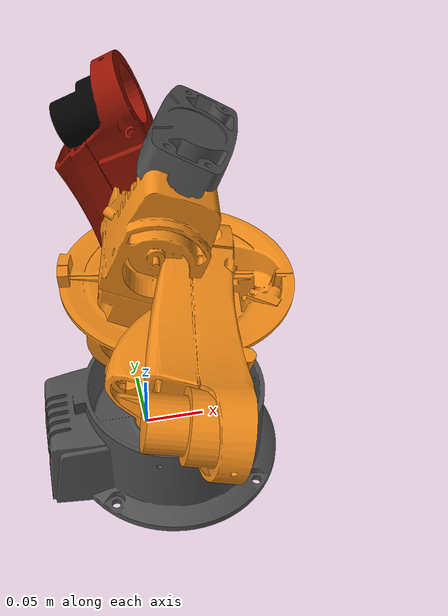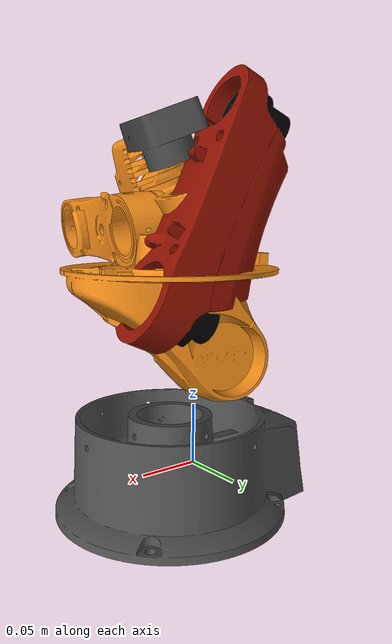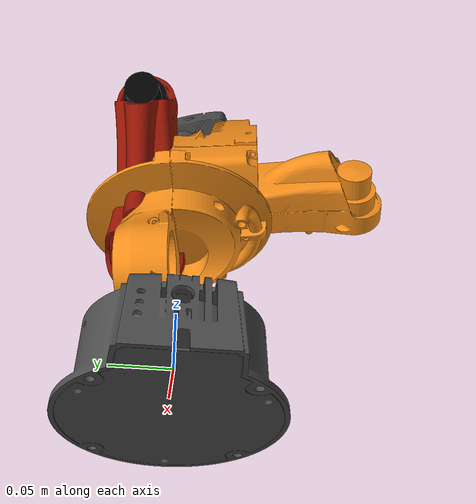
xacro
<?xml version="1.0" ?>
<robot name="youbot" xmlns:sensor="http://playerstage.sourceforge.net/gazebo/xmlschema/#sensor"
       xmlns:controller="http://playerstage.sourceforge.net/gazebo/xmlschema/#controller"
       xmlns:interface="http://playerstage.sourceforge.net/gazebo/xmlschema/#interface"
       xmlns:xacro="http://playerstage.sourceforge.net/gazebo/xmlschema/#interface">

    <property name="M_PI" value="3.1415926535897931" />
	<property name="threshold" value="0.01" />
	<property name="joint_1_limit" value="${M_PI * (169 + 169) / 180}"/>
	<property name="joint_2_limit" value="${M_PI * (90 + 65) / 180}" />
	<property name="joint_3_limit" value="${M_PI * (146 + 151) / 180}" />
	<property name="joint_4_limit" value="${M_PI * (102.5 + 102.5) / 180}" />
	<property name="joint_5_limit" value="${M_PI * (167.5 + 167.5) / 180}" />

	<property name="joint_1_limit_soft" value="${joint_1_limit - threshold}" />
	<property name="joint_2_limit_soft" value="${joint_2_limit - threshold}" />
	<property name="joint_3_limit_soft" value="${joint_3_limit - threshold}" />
	<property name="joint_4_limit_soft" value="${joint_4_limit - threshold}" />
	<property name="joint_5_limit_soft" value="${joint_5_limit - threshold}" />

	<property name="link_0_mass" value="0.961" />
	<property name="link_1_mass" value="1.390" />
	<property name="link_2_mass" value="1.318" />
	<property name="link_3_mass" value="0.821" />
	<property name="link_4_mass" value="0.769" />
	<property name="link_5_mass" value="0.940" />

	<xacro:macro name="default_origin">
		<origin xyz="0 0 0" rpy="0 0 0"/> <!-- no data known -->
	</xacro:macro>

	<xacro:macro name="link_default_inertia_tensor">
		<origin xyz="0 0 0"
			rpy="0 0 0" />
		<inertia ixx="1.0" ixy="0.0" ixz="0.0" iyy="1.0" iyz="0.0" izz="1.0"/>
	</xacro:macro>

	<xacro:macro name="link_default_inertia_tensor">
		<origin xyz="0 0 0"
			rpy="0 0 0" />
		<inertia ixx="0.1" ixy="0" ixz="0" iyy="0.1" iyz="0" izz="0.1" />
	</xacro:macro>

	<xacro:macro name="default_origin">
		<origin xyz="0 0 0" rpy="0 0 0"/> <!-- no data known -->
	</xacro:macro>

	<xacro:macro name="link_default_inertia_tensor">
		<origin xyz="0 0 0"
			rpy="0 0 0" />
		<inertia ixx="1.0" ixy="0.0" ixz="0.0" iyy="1.0" iyz="0.0" izz="1.0"/>
	</xacro:macro>

	<xacro:macro name="link_1_inertia_tensor">
		<origin xyz="${14.89/1000} ${2.13/1000} ${2.13/1000}"
			rpy="0 0 0" />
		<inertia ixx="0.0029525" ixy="0.0" ixz="0.0" iyy="0.0060091" iyz="0.0" izz="0.0058821"/>
	</xacro:macro>

	<xacro:macro name="link_2_inertia_tensor">
		<origin xyz="${10.53/1000} ${-30.7/1000} ${85.97/1000}"
			rpy="0 0 0" />
		<inertia ixx="0.0031145" ixy="0.0" ixz="0.0" iyy="0.0005843" iyz="0.0" izz="0.0031631"/>
	</xacro:macro>

	<xacro:macro name="link_3_inertia_tensor">
		<origin xyz="${0.1/1000} ${20.7/1000} ${71.07/1000}"
			rpy="0 0 0" />
		<inertia ixx="0.00172767" ixy="0.0" ixz="0.0" iyy="0.00041967" iyz="0.0" izz="0.0018468"/>
	</xacro:macro>

	<xacro:macro name="link_4_inertia_tensor">
		<origin xyz="${0.11/1000} ${-20.0/1000} ${50.19/1000}"
			rpy="0 0 0"  />
		<inertia ixx="0.0006764" ixy="0.0" ixz="0.0" iyy="0.0010573" iyz="0.0" izz="0.0006610"/>
	</xacro:macro>

	<xacro:macro name="link_5_inertia_tensor">
		<origin xyz="${0/1000} ${1.15/1000} ${-16.83/1000}"
			rpy="0 0 0" />
		<inertia ixx="0.0001934" ixy="0.0" ixz="0.0" iyy="0.0001602" iyz="0.0" izz="0.0000689"/>

	</xacro:macro>

	<link name="base_link">
	</link>
	<joint name="base_joint" type="fixed" >
			<!-- insert block is removed -->
			<parent link="base_link" />
			<child link="mobile_link" />
	</joint>

  	<link name="mobile_link">
		<inertial>
		   <origin xyz="0 0 0" rpy="0 0 0"/>
		   <mass value="0.0"/>
		   <inertia ixx="0.1"  ixy="0"  ixz="0" iyy="0.1" iyz="0" izz="0.1" />
		</inertial>
	</link>

	<!-- joint between mobile_link and arm_0_link -->
	<joint name="arm_joint_0" type="fixed" >
		<!-- insert block is removed -->
		<parent link="mobile_link" />
		<child link="arm_link_0" />

	</joint>
	<link name="arm_link_0">
		<inertial>
			<origin xyz="0 0 0" rpy="0 0 0"/>
			<mass value="${link_0_mass}"/>
			<inertia ixx="0.01" ixy="0" ixz="0" iyy="0.01" iyz="0" izz="0.01" />
		</inertial>

		<visual>
			<origin xyz="0 0 0" rpy="0 0 0" />
			<geometry>
				<mesh filename="package://youbot_description/meshes/youbot_arm/arm0.dae" />
			</geometry>
			<material name="youBot/DarkGrey" />
		</visual>

		<collision>
			<origin xyz="0 0 0" rpy="0 0 0"/>
			<geometry>
				<mesh filename="package://youbot_description/meshes/youbot_arm/arm0_convex.dae" />
			</geometry>
		</collision>
	</link>

	<!-- joint between arm_0_link and arm_1_link -->
	<joint name="arm_joint_1" type="revolute">
		<origin xyz="0.024 0 0.096" rpy="0 0 ${170 * M_PI / 180}"/>
		<parent link="arm_link_0"/>
		<child link="arm_link_1"/>
		<axis xyz="0 0 -1"/>
		<dynamics damping="1" friction="1" />
		<!-- damping - N*s/m, N*s*m/rad -->
		<!-- friction - N, N*m -->
		<limit effort="${9.5}" velocity="${M_PI / 2.0}" lower="0" upper="${joint_1_limit}"/>
		<!--effort - N, N*m-->
		<!--velocity - m/s, rad/s-->
		<safety_controller k_position="20" k_velocity="${9.5/M_PI / 2.0}" soft_lower_limit="${threshold}" soft_upper_limit="${joint_1_limit_soft}" />
		<!--k_position N/m, N/rad-->
		<!--k_velocity N*s/m, N*s*m/rad-->
		<!--for details: http://www.ros.org/wiki/pr2_controller_manager/safety_limits-->
	</joint>

	<link name="arm_link_1">
		<inertial>
			<mass value="${link_1_mass}"/>
			<xacro:link_1_inertia_tensor />
		</inertial>

		<visual>
			<origin xyz="0 0 0" rpy="0 0 0" />
			<geometry>
				<mesh filename="package://youbot_description/meshes/youbot_arm/arm1.dae" />
			</geometry>
			<material name="youBot/Orange" />
		</visual>

		<collision>
			<origin xyz="0 0 0" rpy="0 0 0" />
			<geometry>
				<mesh filename="package://youbot_description/meshes/youbot_arm/arm1_convex.dae" />
			</geometry>
		</collision>
	</link>

	<!-- joint between arm_1_link and arm_2_link -->
	<joint name="arm_joint_2" type="revolute">
		<origin xyz="0.033 0 0.019" rpy="0 ${-65 * M_PI / 180} 0"/>
		<parent link="arm_link_1"/>
		<child link="arm_link_2"/>
		<axis xyz="0 1 0"/>
		<dynamics damping="1" friction="1" />
		<limit effort="${9.5}" velocity="${M_PI / 2.0}" lower="0" upper="${joint_2_limit}"/>
		<safety_controller k_position="20" k_velocity="${2*9.5/M_PI}" soft_lower_limit="${threshold}" soft_upper_limit="${joint_2_limit_soft}" />
	</joint>

	<link name="arm_link_2">
		<inertial>
			<mass value="${link_2_mass}"/>
			<xacro:link_2_inertia_tensor />
		</inertial>

		<visual>
		<origin xyz="0 -0.032 0.078" rpy="0 0 0" />
			<geometry>
				<mesh filename="package://youbot_description/meshes/youbot_arm/arm2.dae" />
			</geometry>
		</visual>

		<collision>
			<origin xyz="0 -0.032 0.078" rpy="0 0 0" />
			<geometry>
				<mesh filename="package://youbot_description/meshes/youbot_arm/arm2_convex.dae" />
			</geometry>
		</collision>
	</link>

	<joint name="arm_joint_3" type="revolute">
		<origin xyz="0.000 0.000 0.155" rpy="0 ${146 * M_PI / 180} 0"/>
		<parent link="arm_link_2"/>
		<child link="arm_link_3"/>
		<axis xyz="0 1 0"/>
		<dynamics damping="1" friction="1" />
		<limit effort="${6.0}" velocity="${M_PI / 2.0}" lower="-${joint_3_limit}" upper="0"/>
		<safety_controller k_position="20" k_velocity="50" soft_lower_limit="-${joint_3_limit_soft}" soft_upper_limit="-${threshold}" />
	</joint>

	<link name="arm_link_3">
		<inertial>
		<mass value="${link_3_mass}"/>
			<xacro:link_3_inertia_tensor />
		</inertial>

		<visual>
			<origin xyz="0.000 0.028 0.079" rpy="0 0 0" />
			<geometry>
				<mesh filename="package://youbot_description/meshes/youbot_arm/arm3.dae" />
			</geometry>
			<material name="youBot/Orange" />
		</visual>

		<collision>
			<origin xyz="0.000 0.028 0.079" rpy="0 0 0" />
			<geometry>
				<mesh filename="package://youbot_description/meshes/youbot_arm/arm3_convex.dae" />
			</geometry>
		</collision>
	</link>

	<!-- joint between arm_3_link and arm_4_link -->
	<joint name="arm_joint_4" type="revolute">
		<origin xyz="0.000 0.000 0.135" rpy="0 ${-102.5 * M_PI / 180} 0" />
		<parent link="arm_link_3"/>
		<child link="arm_link_4"/>
		<axis xyz="0 1 0" />
		<dynamics damping="1" friction="1" />
		<limit effort="${2.0}" velocity="${M_PI / 2.0}" lower="0" upper="${joint_4_limit}"/>
		<safety_controller k_position="20" k_velocity="100" soft_lower_limit="0" soft_upper_limit="${joint_4_limit_soft}" />
	</joint>

	<link name="arm_link_4">
		<inertial>
			<mass value="${link_4_mass}"/>
			<xacro:link_4_inertia_tensor />
		</inertial>

		<visual>
			<origin xyz="0 -0.010 0.029" rpy="0 0 0"/>
			<geometry>
				<mesh filename="package://youbot_description/meshes/youbot_arm/arm4.dae" />
			</geometry>
			<material name="youBot/Orange" />
		</visual>

		<collision>
			<origin xyz="0 -0.010 0.029" rpy="0 0 0"/>
			<geometry>
				<mesh filename="package://youbot_description/meshes/youbot_arm/arm4_convex.dae" />
			</geometry>
		</collision>
	</link>

	<!-- joint between arm_4_link and arm_5_link -->
	<joint name="arm_joint_5" type="revolute">
		<origin xyz="-0.002 0 0.130" rpy="0 0 ${167.5 * M_PI / 180}" />
		<parent link="arm_link_4"/>
		<child link="arm_link_5"/>
		<axis xyz="0 0 -1" />
		<dynamics damping="1" friction="1" />
		<limit effort="${1.0}" velocity="${M_PI / 2.0}" lower="0" upper="${joint_5_limit}" />
		<safety_controller k_position="20" k_velocity="100" soft_lower_limit="0" soft_upper_limit="${joint_5_limit_soft}" />
	</joint>

	<link name="arm_link_5">
		<inertial>
			<mass value="${link_5_mass}"/>
			<xacro:link_5_inertia_tensor />
		</inertial>

		<visual>
			<origin xyz="0.003 0 -0.034" rpy="0 0 0" />
			<geometry>
				<mesh filename="package://youbot_description/meshes/youbot_arm/arm5.dae" />
			</geometry>
			<material name="youBot/DarkGrey" />
		</visual>

		<collision>
			<origin xyz="0.003 0 -0.034" rpy="0 0 0" />
			<geometry>
				<mesh filename="package://youbot_description/meshes/youbot_arm/arm5_convex.dae" />
			</geometry>
		</collision>
	</link>
</robot>
